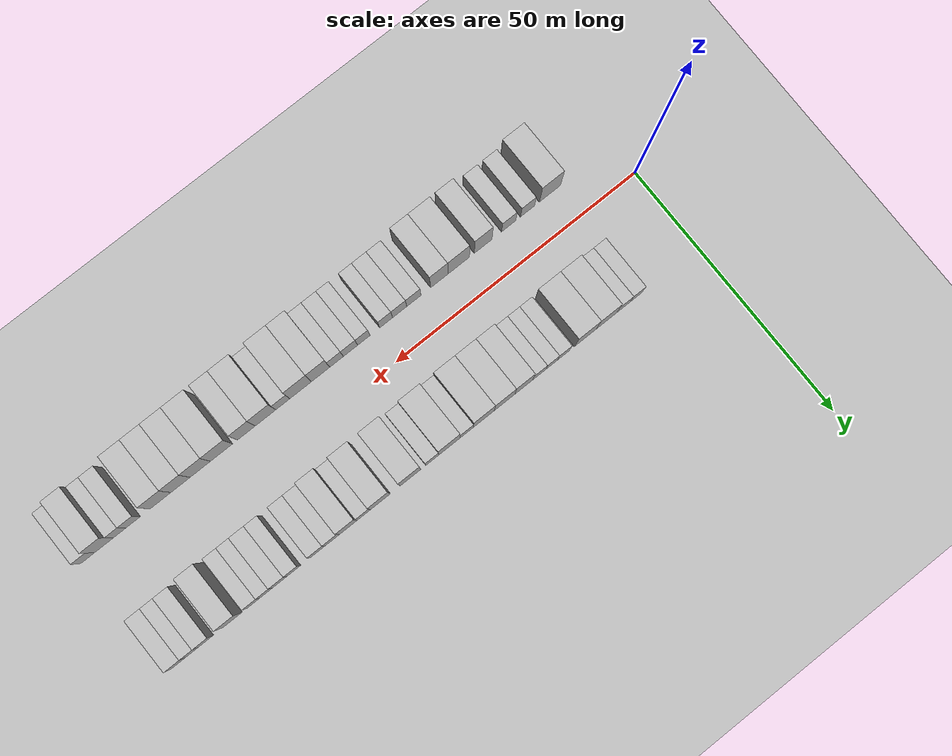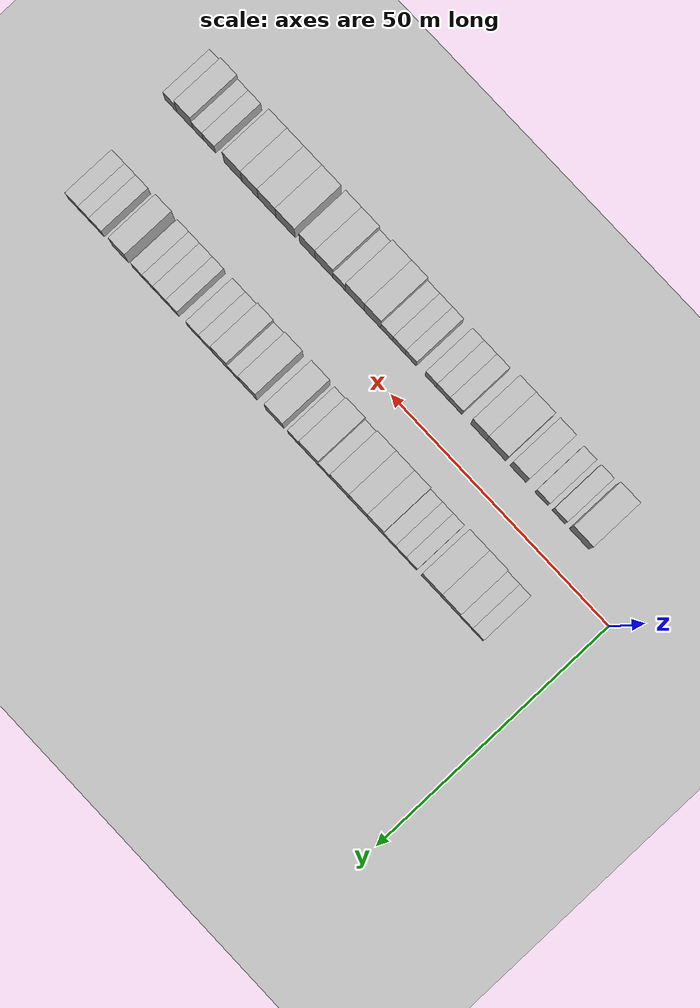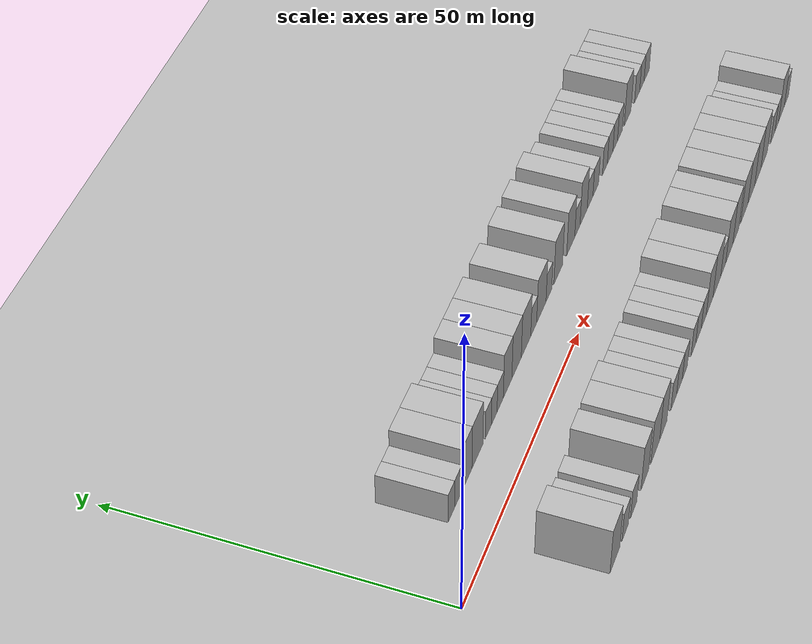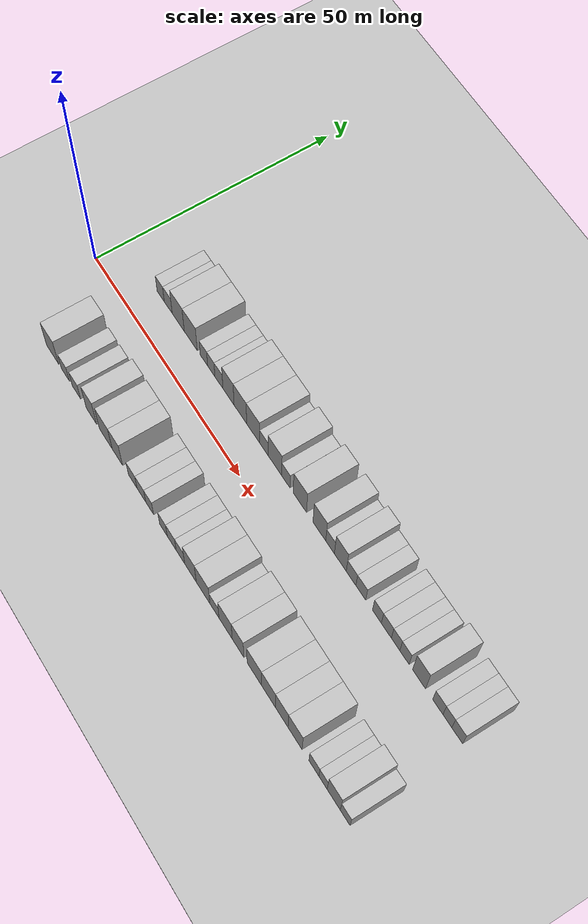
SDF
<sdf version="1.6">
 <world name="default">
  <include><name>ground_plane_1</name><uri>model://HANNAS_ground_plane</uri></include>
  <include>
   <name>ground_plane_2</name>
   <uri>model://HANNAS_ground_plane</uri>
   <pose>100 0 0  0 0 0</pose>
  </include>
  <model name="building_1">
   <static>1</static>
   <pose>13.2620 11.0000 0 0.000000 0.000000 1.570796</pose>
   <link name="link">
    <pose>0 0 3.00 0 0 0</pose>
    <collision name="collision"><geometry><box><size>10.0000 2.5239 6.0000</size></box></geometry></collision>
    <visual name="visual">
     <cast_shadows>0</cast_shadows>
     <geometry><box><size>10.0000 2.5239 6.0000</size></box></geometry>
     <material>
      <script>
       <uri>model://HANNAS_wall/materials/scripts</uri>
       <uri>model://HANNAS_wall/materials/textures</uri>
       <name>vrc/HANNAS_wall</name>
      </script>
     </material>
    </visual>
   </link>
  </model>
  <model name="building_2">
   <static>1</static>
   <pose>15.9279 11.0000 0 0.000000 0.000000 1.570796</pose>
   <link name="link">
    <pose>0 0 3.00 0 0 0</pose>
    <collision name="collision"><geometry><box><size>10.0000 2.8079 6.0000</size></box></geometry></collision>
    <visual name="visual">
     <cast_shadows>0</cast_shadows>
     <geometry><box><size>10.0000 2.8079 6.0000</size></box></geometry>
     <material>
      <script>
       <uri>model://HANNAS_wall/materials/scripts</uri>
       <uri>model://HANNAS_wall/materials/textures</uri>
       <name>vrc/HANNAS_wall</name>
      </script>
     </material>
    </visual>
   </link>
  </model>
  <model name="building_3">
   <static>1</static>
   <pose>19.4337 11.0000 0 0.000000 0.000000 1.570796</pose>
   <link name="link">
    <pose>0 0 4.50 0 0 0</pose>
    <collision name="collision"><geometry><box><size>10.0000 4.2038 9.0000</size></box></geometry></collision>
    <visual name="visual">
     <cast_shadows>0</cast_shadows>
     <geometry><box><size>10.0000 4.2038 9.0000</size></box></geometry>
     <material>
      <script>
       <uri>model://HANNAS_wall/materials/scripts</uri>
       <uri>model://HANNAS_wall/materials/textures</uri>
       <name>vrc/HANNAS_wall</name>
      </script>
     </material>
    </visual>
   </link>
  </model>
  <model name="building_4">
   <static>1</static>
   <pose>23.7834 11.0000 0 0.000000 0.000000 1.570796</pose>
   <link name="link">
    <pose>0 0 4.50 0 0 0</pose>
    <collision name="collision"><geometry><box><size>10.0000 4.4956 9.0000</size></box></geometry></collision>
    <visual name="visual">
     <cast_shadows>0</cast_shadows>
     <geometry><box><size>10.0000 4.4956 9.0000</size></box></geometry>
     <material>
      <script>
       <uri>model://HANNAS_wall/materials/scripts</uri>
       <uri>model://HANNAS_wall/materials/textures</uri>
       <name>vrc/HANNAS_wall</name>
      </script>
     </material>
    </visual>
   </link>
  </model>
  <model name="building_5">
   <static>1</static>
   <pose>28.2973 11.0000 0 0.000000 0.000000 1.570796</pose>
   <link name="link">
    <pose>0 0 3.00 0 0 0</pose>
    <collision name="collision"><geometry><box><size>10.0000 2.5322 6.0000</size></box></geometry></collision>
    <visual name="visual">
     <cast_shadows>0</cast_shadows>
     <geometry><box><size>10.0000 2.5322 6.0000</size></box></geometry>
     <material>
      <script>
       <uri>model://HANNAS_wall/materials/scripts</uri>
       <uri>model://HANNAS_wall/materials/textures</uri>
       <name>vrc/HANNAS_wall</name>
      </script>
     </material>
    </visual>
   </link>
  </model>
  <model name="building_6">
   <static>1</static>
   <pose>30.7868 11.0000 0 0.000000 0.000000 1.570796</pose>
   <link name="link">
    <pose>0 0 3.00 0 0 0</pose>
    <collision name="collision"><geometry><box><size>10.0000 2.4468 6.0000</size></box></geometry></collision>
    <visual name="visual">
     <cast_shadows>0</cast_shadows>
     <geometry><box><size>10.0000 2.4468 6.0000</size></box></geometry>
     <material>
      <script>
       <uri>model://HANNAS_wall/materials/scripts</uri>
       <uri>model://HANNAS_wall/materials/textures</uri>
       <name>vrc/HANNAS_wall</name>
      </script>
     </material>
    </visual>
   </link>
  </model>
  <model name="building_7">
   <static>1</static>
   <pose>33.3563 11.0000 0 0.000000 0.000000 1.570796</pose>
   <link name="link">
    <pose>0 0 3.00 0 0 0</pose>
    <collision name="collision"><geometry><box><size>10.0000 2.6920 6.0000</size></box></geometry></collision>
    <visual name="visual">
     <cast_shadows>0</cast_shadows>
     <geometry><box><size>10.0000 2.6920 6.0000</size></box></geometry>
     <material>
      <script>
       <uri>model://HANNAS_wall/materials/scripts</uri>
       <uri>model://HANNAS_wall/materials/textures</uri>
       <name>vrc/HANNAS_wall</name>
      </script>
     </material>
    </visual>
   </link>
  </model>
  <model name="building_8">
   <static>1</static>
   <pose>36.5656 11.0000 0 0.000000 0.000000 1.570796</pose>
   <link name="link">
    <pose>0 0 4.50 0 0 0</pose>
    <collision name="collision"><geometry><box><size>10.0000 3.7267 9.0000</size></box></geometry></collision>
    <visual name="visual">
     <cast_shadows>0</cast_shadows>
     <geometry><box><size>10.0000 3.7267 9.0000</size></box></geometry>
     <material>
      <script>
       <uri>model://HANNAS_wall/materials/scripts</uri>
       <uri>model://HANNAS_wall/materials/textures</uri>
       <name>vrc/HANNAS_wall</name>
      </script>
     </material>
    </visual>
   </link>
  </model>
  <model name="building_9">
   <static>1</static>
   <pose>40.5129 11.0000 0 0.000000 0.000000 1.570796</pose>
   <link name="link">
    <pose>0 0 4.50 0 0 0</pose>
    <collision name="collision"><geometry><box><size>10.0000 4.1679 9.0000</size></box></geometry></collision>
    <visual name="visual">
     <cast_shadows>0</cast_shadows>
     <geometry><box><size>10.0000 4.1679 9.0000</size></box></geometry>
     <material>
      <script>
       <uri>model://HANNAS_wall/materials/scripts</uri>
       <uri>model://HANNAS_wall/materials/textures</uri>
       <name>vrc/HANNAS_wall</name>
      </script>
     </material>
    </visual>
   </link>
  </model>
  <model name="building_10">
   <static>1</static>
   <pose>44.7344 11.0000 0 0.000000 0.000000 1.570796</pose>
   <link name="link">
    <pose>0 0 4.50 0 0 0</pose>
    <collision name="collision"><geometry><box><size>10.0000 4.2751 9.0000</size></box></geometry></collision>
    <visual name="visual">
     <cast_shadows>0</cast_shadows>
     <geometry><box><size>10.0000 4.2751 9.0000</size></box></geometry>
     <material>
      <script>
       <uri>model://HANNAS_wall/materials/scripts</uri>
       <uri>model://HANNAS_wall/materials/textures</uri>
       <name>vrc/HANNAS_wall</name>
      </script>
     </material>
    </visual>
   </link>
  </model>
  <model name="building_11">
   <static>1</static>
   <pose>48.2153 11.0000 0 0.000000 0.000000 1.570796</pose>
   <link name="link">
    <pose>0 0 3.00 0 0 0</pose>
    <collision name="collision"><geometry><box><size>10.0000 2.6868 6.0000</size></box></geometry></collision>
    <visual name="visual">
     <cast_shadows>0</cast_shadows>
     <geometry><box><size>10.0000 2.6868 6.0000</size></box></geometry>
     <material>
      <script>
       <uri>model://HANNAS_wall/materials/scripts</uri>
       <uri>model://HANNAS_wall/materials/textures</uri>
       <name>vrc/HANNAS_wall</name>
      </script>
     </material>
    </visual>
   </link>
  </model>
  <model name="building_12">
   <static>1</static>
   <pose>51.7412 11.0000 0 0.000000 0.000000 1.570796</pose>
   <link name="link">
    <pose>0 0 4.50 0 0 0</pose>
    <collision name="collision"><geometry><box><size>10.0000 4.3649 9.0000</size></box></geometry></collision>
    <visual name="visual">
     <cast_shadows>0</cast_shadows>
     <geometry><box><size>10.0000 4.3649 9.0000</size></box></geometry>
     <material>
      <script>
       <uri>model://HANNAS_wall/materials/scripts</uri>
       <uri>model://HANNAS_wall/materials/textures</uri>
       <name>vrc/HANNAS_wall</name>
      </script>
     </material>
    </visual>
   </link>
  </model>
  <model name="building_13">
   <static>1</static>
   <pose>55.2586 11.0000 0 0.000000 0.000000 1.570796</pose>
   <link name="link">
    <pose>0 0 3.00 0 0 0</pose>
    <collision name="collision"><geometry><box><size>10.0000 2.6699 6.0000</size></box></geometry></collision>
    <visual name="visual">
     <cast_shadows>0</cast_shadows>
     <geometry><box><size>10.0000 2.6699 6.0000</size></box></geometry>
     <material>
      <script>
       <uri>model://HANNAS_wall/materials/scripts</uri>
       <uri>model://HANNAS_wall/materials/textures</uri>
       <name>vrc/HANNAS_wall</name>
      </script>
     </material>
    </visual>
   </link>
  </model>
  <model name="building_14">
   <static>1</static>
   <pose>59.6902 11.0000 0 0.000000 0.000000 1.570796</pose>
   <link name="link">
    <pose>0 0 4.50 0 0 0</pose>
    <collision name="collision"><geometry><box><size>10.0000 4.1933 9.0000</size></box></geometry></collision>
    <visual name="visual">
     <cast_shadows>0</cast_shadows>
     <geometry><box><size>10.0000 4.1933 9.0000</size></box></geometry>
     <material>
      <script>
       <uri>model://HANNAS_wall/materials/scripts</uri>
       <uri>model://HANNAS_wall/materials/textures</uri>
       <name>vrc/HANNAS_wall</name>
      </script>
     </material>
    </visual>
   </link>
  </model>
  <model name="building_15">
   <static>1</static>
   <pose>65.7693 11.0000 0 0.000000 0.000000 1.570796</pose>
   <link name="link">
    <pose>0 0 4.50 0 0 0</pose>
    <collision name="collision"><geometry><box><size>10.0000 3.9649 9.0000</size></box></geometry></collision>
    <visual name="visual">
     <cast_shadows>0</cast_shadows>
     <geometry><box><size>10.0000 3.9649 9.0000</size></box></geometry>
     <material>
      <script>
       <uri>model://HANNAS_wall/materials/scripts</uri>
       <uri>model://HANNAS_wall/materials/textures</uri>
       <name>vrc/HANNAS_wall</name>
      </script>
     </material>
    </visual>
   </link>
  </model>
  <model name="building_16">
   <static>1</static>
   <pose>69.0763 11.0000 0 0.000000 0.000000 1.570796</pose>
   <link name="link">
    <pose>0 0 3.00 0 0 0</pose>
    <collision name="collision"><geometry><box><size>10.0000 2.6493 6.0000</size></box></geometry></collision>
    <visual name="visual">
     <cast_shadows>0</cast_shadows>
     <geometry><box><size>10.0000 2.6493 6.0000</size></box></geometry>
     <material>
      <script>
       <uri>model://HANNAS_wall/materials/scripts</uri>
       <uri>model://HANNAS_wall/materials/textures</uri>
       <name>vrc/HANNAS_wall</name>
      </script>
     </material>
    </visual>
   </link>
  </model>
  <model name="building_17">
   <static>1</static>
   <pose>72.2110 11.0000 0 0.000000 0.000000 1.570796</pose>
   <link name="link">
    <pose>0 0 4.50 0 0 0</pose>
    <collision name="collision"><geometry><box><size>10.0000 3.6201 9.0000</size></box></geometry></collision>
    <visual name="visual">
     <cast_shadows>0</cast_shadows>
     <geometry><box><size>10.0000 3.6201 9.0000</size></box></geometry>
     <material>
      <script>
       <uri>model://HANNAS_wall/materials/scripts</uri>
       <uri>model://HANNAS_wall/materials/textures</uri>
       <name>vrc/HANNAS_wall</name>
      </script>
     </material>
    </visual>
   </link>
  </model>
  <model name="building_18">
   <static>1</static>
   <pose>75.4774 11.0000 0 0.000000 0.000000 1.570796</pose>
   <link name="link">
    <pose>0 0 3.00 0 0 0</pose>
    <collision name="collision"><geometry><box><size>10.0000 2.9127 6.0000</size></box></geometry></collision>
    <visual name="visual">
     <cast_shadows>0</cast_shadows>
     <geometry><box><size>10.0000 2.9127 6.0000</size></box></geometry>
     <material>
      <script>
       <uri>model://HANNAS_wall/materials/scripts</uri>
       <uri>model://HANNAS_wall/materials/textures</uri>
       <name>vrc/HANNAS_wall</name>
      </script>
     </material>
    </visual>
   </link>
  </model>
  <model name="building_19">
   <static>1</static>
   <pose>78.4027 11.0000 0 0.000000 0.000000 1.570796</pose>
   <link name="link">
    <pose>0 0 3.00 0 0 0</pose>
    <collision name="collision"><geometry><box><size>10.0000 2.9378 6.0000</size></box></geometry></collision>
    <visual name="visual">
     <cast_shadows>0</cast_shadows>
     <geometry><box><size>10.0000 2.9378 6.0000</size></box></geometry>
     <material>
      <script>
       <uri>model://HANNAS_wall/materials/scripts</uri>
       <uri>model://HANNAS_wall/materials/textures</uri>
       <name>vrc/HANNAS_wall</name>
      </script>
     </material>
    </visual>
   </link>
  </model>
  <model name="building_20">
   <static>1</static>
   <pose>83.1809 11.0000 0 0.000000 0.000000 1.570796</pose>
   <link name="link">
    <pose>0 0 3.00 0 0 0</pose>
    <collision name="collision"><geometry><box><size>10.0000 2.6186 6.0000</size></box></geometry></collision>
    <visual name="visual">
     <cast_shadows>0</cast_shadows>
     <geometry><box><size>10.0000 2.6186 6.0000</size></box></geometry>
     <material>
      <script>
       <uri>model://HANNAS_wall/materials/scripts</uri>
       <uri>model://HANNAS_wall/materials/textures</uri>
       <name>vrc/HANNAS_wall</name>
      </script>
     </material>
    </visual>
   </link>
  </model>
  <model name="building_21">
   <static>1</static>
   <pose>85.9597 11.0000 0 0.000000 0.000000 1.570796</pose>
   <link name="link">
    <pose>0 0 3.00 0 0 0</pose>
    <collision name="collision"><geometry><box><size>10.0000 2.9390 6.0000</size></box></geometry></collision>
    <visual name="visual">
     <cast_shadows>0</cast_shadows>
     <geometry><box><size>10.0000 2.9390 6.0000</size></box></geometry>
     <material>
      <script>
       <uri>model://HANNAS_wall/materials/scripts</uri>
       <uri>model://HANNAS_wall/materials/textures</uri>
       <name>vrc/HANNAS_wall</name>
      </script>
     </material>
    </visual>
   </link>
  </model>
  <model name="building_22">
   <static>1</static>
   <pose>88.6593 11.0000 0 0.000000 0.000000 1.570796</pose>
   <link name="link">
    <pose>0 0 3.00 0 0 0</pose>
    <collision name="collision"><geometry><box><size>10.0000 2.4602 6.0000</size></box></geometry></collision>
    <visual name="visual">
     <cast_shadows>0</cast_shadows>
     <geometry><box><size>10.0000 2.4602 6.0000</size></box></geometry>
     <material>
      <script>
       <uri>model://HANNAS_wall/materials/scripts</uri>
       <uri>model://HANNAS_wall/materials/textures</uri>
       <name>vrc/HANNAS_wall</name>
      </script>
     </material>
    </visual>
   </link>
  </model>
  <model name="building_23">
   <static>1</static>
   <pose>91.2273 11.0000 0 0.000000 0.000000 1.570796</pose>
   <link name="link">
    <pose>0 0 3.00 0 0 0</pose>
    <collision name="collision"><geometry><box><size>10.0000 2.6759 6.0000</size></box></geometry></collision>
    <visual name="visual">
     <cast_shadows>0</cast_shadows>
     <geometry><box><size>10.0000 2.6759 6.0000</size></box></geometry>
     <material>
      <script>
       <uri>model://HANNAS_wall/materials/scripts</uri>
       <uri>model://HANNAS_wall/materials/textures</uri>
       <name>vrc/HANNAS_wall</name>
      </script>
     </material>
    </visual>
   </link>
  </model>
  <model name="building_24">
   <static>1</static>
   <pose>95.4174 11.0000 0 0.000000 0.000000 1.570796</pose>
   <link name="link">
    <pose>0 0 4.50 0 0 0</pose>
    <collision name="collision"><geometry><box><size>10.0000 3.7043 9.0000</size></box></geometry></collision>
    <visual name="visual">
     <cast_shadows>0</cast_shadows>
     <geometry><box><size>10.0000 3.7043 9.0000</size></box></geometry>
     <material>
      <script>
       <uri>model://HANNAS_wall/materials/scripts</uri>
       <uri>model://HANNAS_wall/materials/textures</uri>
       <name>vrc/HANNAS_wall</name>
      </script>
     </material>
    </visual>
   </link>
  </model>
  <model name="building_25">
   <static>1</static>
   <pose>100.7175 11.0000 0 0.000000 0.000000 1.570796</pose>
   <link name="link">
    <pose>0 0 3.00 0 0 0</pose>
    <collision name="collision"><geometry><box><size>10.0000 2.8959 6.0000</size></box></geometry></collision>
    <visual name="visual">
     <cast_shadows>0</cast_shadows>
     <geometry><box><size>10.0000 2.8959 6.0000</size></box></geometry>
     <material>
      <script>
       <uri>model://HANNAS_wall/materials/scripts</uri>
       <uri>model://HANNAS_wall/materials/textures</uri>
       <name>vrc/HANNAS_wall</name>
      </script>
     </material>
    </visual>
   </link>
  </model>
  <model name="building_26">
   <static>1</static>
   <pose>103.4098 11.0000 0 0.000000 0.000000 1.570796</pose>
   <link name="link">
    <pose>0 0 3.00 0 0 0</pose>
    <collision name="collision"><geometry><box><size>10.0000 2.4887 6.0000</size></box></geometry></collision>
    <visual name="visual">
     <cast_shadows>0</cast_shadows>
     <geometry><box><size>10.0000 2.4887 6.0000</size></box></geometry>
     <material>
      <script>
       <uri>model://HANNAS_wall/materials/scripts</uri>
       <uri>model://HANNAS_wall/materials/textures</uri>
       <name>vrc/HANNAS_wall</name>
      </script>
     </material>
    </visual>
   </link>
  </model>
  <model name="building_27">
   <static>1</static>
   <pose>106.1464 11.0000 0 0.000000 0.000000 1.570796</pose>
   <link name="link">
    <pose>0 0 3.00 0 0 0</pose>
    <collision name="collision"><geometry><box><size>10.0000 2.9846 6.0000</size></box></geometry></collision>
    <visual name="visual">
     <cast_shadows>0</cast_shadows>
     <geometry><box><size>10.0000 2.9846 6.0000</size></box></geometry>
     <material>
      <script>
       <uri>model://HANNAS_wall/materials/scripts</uri>
       <uri>model://HANNAS_wall/materials/textures</uri>
       <name>vrc/HANNAS_wall</name>
      </script>
     </material>
    </visual>
   </link>
  </model>
  <model name="building_56">
   <static>1</static>
   <pose>13.2249 -11.0000 0 0.000000 0.000000 1.570796</pose>
   <link name="link">
    <pose>0 0 4.50 0 0 0</pose>
    <collision name="collision"><geometry><box><size>10.0000 4.4498 9.0000</size></box></geometry></collision>
    <visual name="visual">
     <cast_shadows>0</cast_shadows>
     <geometry><box><size>10.0000 4.4498 9.0000</size></box></geometry>
     <material>
      <script>
       <uri>model://HANNAS_wall/materials/scripts</uri>
       <uri>model://HANNAS_wall/materials/textures</uri>
       <name>vrc/HANNAS_wall</name>
      </script>
     </material>
    </visual>
   </link>
  </model>
  <model name="building_57">
   <static>1</static>
   <pose>17.9201 -11.0000 0 0.000000 0.000000 1.570796</pose>
   <link name="link">
    <pose>0 0 3.00 0 0 0</pose>
    <collision name="collision"><geometry><box><size>10.0000 2.9406 6.0000</size></box></geometry></collision>
    <visual name="visual">
     <cast_shadows>0</cast_shadows>
     <geometry><box><size>10.0000 2.9406 6.0000</size></box></geometry>
     <material>
      <script>
       <uri>model://HANNAS_wall/materials/scripts</uri>
       <uri>model://HANNAS_wall/materials/textures</uri>
       <name>vrc/HANNAS_wall</name>
      </script>
     </material>
    </visual>
   </link>
  </model>
  <model name="building_58">
   <static>1</static>
   <pose>21.8695 -11.0000 0 0.000000 0.000000 1.570796</pose>
   <link name="link">
    <pose>0 0 3.00 0 0 0</pose>
    <collision name="collision"><geometry><box><size>10.0000 2.9582 6.0000</size></box></geometry></collision>
    <visual name="visual">
     <cast_shadows>0</cast_shadows>
     <geometry><box><size>10.0000 2.9582 6.0000</size></box></geometry>
     <material>
      <script>
       <uri>model://HANNAS_wall/materials/scripts</uri>
       <uri>model://HANNAS_wall/materials/textures</uri>
       <name>vrc/HANNAS_wall</name>
      </script>
     </material>
    </visual>
   </link>
  </model>
  <model name="building_59">
   <static>1</static>
   <pose>27.1877 -11.0000 0 0.000000 0.000000 1.570796</pose>
   <link name="link">
    <pose>0 0 4.50 0 0 0</pose>
    <collision name="collision"><geometry><box><size>10.0000 3.6783 9.0000</size></box></geometry></collision>
    <visual name="visual">
     <cast_shadows>0</cast_shadows>
     <geometry><box><size>10.0000 3.6783 9.0000</size></box></geometry>
     <material>
      <script>
       <uri>model://HANNAS_wall/materials/scripts</uri>
       <uri>model://HANNAS_wall/materials/textures</uri>
       <name>vrc/HANNAS_wall</name>
      </script>
     </material>
    </visual>
   </link>
  </model>
  <model name="building_60">
   <static>1</static>
   <pose>32.2404 -11.0000 0 0.000000 0.000000 1.570796</pose>
   <link name="link">
    <pose>0 0 4.50 0 0 0</pose>
    <collision name="collision"><geometry><box><size>10.0000 4.4270 9.0000</size></box></geometry></collision>
    <visual name="visual">
     <cast_shadows>0</cast_shadows>
     <geometry><box><size>10.0000 4.4270 9.0000</size></box></geometry>
     <material>
      <script>
       <uri>model://HANNAS_wall/materials/scripts</uri>
       <uri>model://HANNAS_wall/materials/textures</uri>
       <name>vrc/HANNAS_wall</name>
      </script>
     </material>
    </visual>
   </link>
  </model>
  <model name="building_61">
   <static>1</static>
   <pose>36.2600 -11.0000 0 0.000000 0.000000 1.570796</pose>
   <link name="link">
    <pose>0 0 4.50 0 0 0</pose>
    <collision name="collision"><geometry><box><size>10.0000 3.6122 9.0000</size></box></geometry></collision>
    <visual name="visual">
     <cast_shadows>0</cast_shadows>
     <geometry><box><size>10.0000 3.6122 9.0000</size></box></geometry>
     <material>
      <script>
       <uri>model://HANNAS_wall/materials/scripts</uri>
       <uri>model://HANNAS_wall/materials/textures</uri>
       <name>vrc/HANNAS_wall</name>
      </script>
     </material>
    </visual>
   </link>
  </model>
  <model name="building_62">
   <static>1</static>
   <pose>41.5391 -11.0000 0 0.000000 0.000000 1.570796</pose>
   <link name="link">
    <pose>0 0 3.00 0 0 0</pose>
    <collision name="collision"><geometry><box><size>10.0000 2.9460 6.0000</size></box></geometry></collision>
    <visual name="visual">
     <cast_shadows>0</cast_shadows>
     <geometry><box><size>10.0000 2.9460 6.0000</size></box></geometry>
     <material>
      <script>
       <uri>model://HANNAS_wall/materials/scripts</uri>
       <uri>model://HANNAS_wall/materials/textures</uri>
       <name>vrc/HANNAS_wall</name>
      </script>
     </material>
    </visual>
   </link>
  </model>
  <model name="building_63">
   <static>1</static>
   <pose>44.4759 -11.0000 0 0.000000 0.000000 1.570796</pose>
   <link name="link">
    <pose>0 0 3.00 0 0 0</pose>
    <collision name="collision"><geometry><box><size>10.0000 2.9277 6.0000</size></box></geometry></collision>
    <visual name="visual">
     <cast_shadows>0</cast_shadows>
     <geometry><box><size>10.0000 2.9277 6.0000</size></box></geometry>
     <material>
      <script>
       <uri>model://HANNAS_wall/materials/scripts</uri>
       <uri>model://HANNAS_wall/materials/textures</uri>
       <name>vrc/HANNAS_wall</name>
      </script>
     </material>
    </visual>
   </link>
  </model>
  <model name="building_64">
   <static>1</static>
   <pose>47.2552 -11.0000 0 0.000000 0.000000 1.570796</pose>
   <link name="link">
    <pose>0 0 3.00 0 0 0</pose>
    <collision name="collision"><geometry><box><size>10.0000 2.6308 6.0000</size></box></geometry></collision>
    <visual name="visual">
     <cast_shadows>0</cast_shadows>
     <geometry><box><size>10.0000 2.6308 6.0000</size></box></geometry>
     <material>
      <script>
       <uri>model://HANNAS_wall/materials/scripts</uri>
       <uri>model://HANNAS_wall/materials/textures</uri>
       <name>vrc/HANNAS_wall</name>
      </script>
     </material>
    </visual>
   </link>
  </model>
  <model name="building_65">
   <static>1</static>
   <pose>51.8342 -11.0000 0 0.000000 0.000000 1.570796</pose>
   <link name="link">
    <pose>0 0 3.00 0 0 0</pose>
    <collision name="collision"><geometry><box><size>10.0000 2.5273 6.0000</size></box></geometry></collision>
    <visual name="visual">
     <cast_shadows>0</cast_shadows>
     <geometry><box><size>10.0000 2.5273 6.0000</size></box></geometry>
     <material>
      <script>
       <uri>model://HANNAS_wall/materials/scripts</uri>
       <uri>model://HANNAS_wall/materials/textures</uri>
       <name>vrc/HANNAS_wall</name>
      </script>
     </material>
    </visual>
   </link>
  </model>
  <model name="building_66">
   <static>1</static>
   <pose>54.5648 -11.0000 0 0.000000 0.000000 1.570796</pose>
   <link name="link">
    <pose>0 0 3.00 0 0 0</pose>
    <collision name="collision"><geometry><box><size>10.0000 2.9340 6.0000</size></box></geometry></collision>
    <visual name="visual">
     <cast_shadows>0</cast_shadows>
     <geometry><box><size>10.0000 2.9340 6.0000</size></box></geometry>
     <material>
      <script>
       <uri>model://HANNAS_wall/materials/scripts</uri>
       <uri>model://HANNAS_wall/materials/textures</uri>
       <name>vrc/HANNAS_wall</name>
      </script>
     </material>
    </visual>
   </link>
  </model>
  <model name="building_67">
   <static>1</static>
   <pose>57.4182 -11.0000 0 0.000000 0.000000 1.570796</pose>
   <link name="link">
    <pose>0 0 3.00 0 0 0</pose>
    <collision name="collision"><geometry><box><size>10.0000 2.7728 6.0000</size></box></geometry></collision>
    <visual name="visual">
     <cast_shadows>0</cast_shadows>
     <geometry><box><size>10.0000 2.7728 6.0000</size></box></geometry>
     <material>
      <script>
       <uri>model://HANNAS_wall/materials/scripts</uri>
       <uri>model://HANNAS_wall/materials/textures</uri>
       <name>vrc/HANNAS_wall</name>
      </script>
     </material>
    </visual>
   </link>
  </model>
  <model name="building_68">
   <static>1</static>
   <pose>60.6773 -11.0000 0 0.000000 0.000000 1.570796</pose>
   <link name="link">
    <pose>0 0 4.50 0 0 0</pose>
    <collision name="collision"><geometry><box><size>10.0000 3.7452 9.0000</size></box></geometry></collision>
    <visual name="visual">
     <cast_shadows>0</cast_shadows>
     <geometry><box><size>10.0000 3.7452 9.0000</size></box></geometry>
     <material>
      <script>
       <uri>model://HANNAS_wall/materials/scripts</uri>
       <uri>model://HANNAS_wall/materials/textures</uri>
       <name>vrc/HANNAS_wall</name>
      </script>
     </material>
    </visual>
   </link>
  </model>
  <model name="building_69">
   <static>1</static>
   <pose>64.7349 -11.0000 0 0.000000 0.000000 1.570796</pose>
   <link name="link">
    <pose>0 0 4.50 0 0 0</pose>
    <collision name="collision"><geometry><box><size>10.0000 4.3701 9.0000</size></box></geometry></collision>
    <visual name="visual">
     <cast_shadows>0</cast_shadows>
     <geometry><box><size>10.0000 4.3701 9.0000</size></box></geometry>
     <material>
      <script>
       <uri>model://HANNAS_wall/materials/scripts</uri>
       <uri>model://HANNAS_wall/materials/textures</uri>
       <name>vrc/HANNAS_wall</name>
      </script>
     </material>
    </visual>
   </link>
  </model>
  <model name="building_70">
   <static>1</static>
   <pose>68.3475 -11.0000 0 0.000000 0.000000 1.570796</pose>
   <link name="link">
    <pose>0 0 3.00 0 0 0</pose>
    <collision name="collision"><geometry><box><size>10.0000 2.8551 6.0000</size></box></geometry></collision>
    <visual name="visual">
     <cast_shadows>0</cast_shadows>
     <geometry><box><size>10.0000 2.8551 6.0000</size></box></geometry>
     <material>
      <script>
       <uri>model://HANNAS_wall/materials/scripts</uri>
       <uri>model://HANNAS_wall/materials/textures</uri>
       <name>vrc/HANNAS_wall</name>
      </script>
     </material>
    </visual>
   </link>
  </model>
  <model name="building_71">
   <static>1</static>
   <pose>71.8405 -11.0000 0 0.000000 0.000000 1.570796</pose>
   <link name="link">
    <pose>0 0 4.50 0 0 0</pose>
    <collision name="collision"><geometry><box><size>10.0000 4.1308 9.0000</size></box></geometry></collision>
    <visual name="visual">
     <cast_shadows>0</cast_shadows>
     <geometry><box><size>10.0000 4.1308 9.0000</size></box></geometry>
     <material>
      <script>
       <uri>model://HANNAS_wall/materials/scripts</uri>
       <uri>model://HANNAS_wall/materials/textures</uri>
       <name>vrc/HANNAS_wall</name>
      </script>
     </material>
    </visual>
   </link>
  </model>
  <model name="building_72">
   <static>1</static>
   <pose>75.7114 -11.0000 0 0.000000 0.000000 1.570796</pose>
   <link name="link">
    <pose>0 0 4.50 0 0 0</pose>
    <collision name="collision"><geometry><box><size>10.0000 3.6112 9.0000</size></box></geometry></collision>
    <visual name="visual">
     <cast_shadows>0</cast_shadows>
     <geometry><box><size>10.0000 3.6112 9.0000</size></box></geometry>
     <material>
      <script>
       <uri>model://HANNAS_wall/materials/scripts</uri>
       <uri>model://HANNAS_wall/materials/textures</uri>
       <name>vrc/HANNAS_wall</name>
      </script>
     </material>
    </visual>
   </link>
  </model>
  <model name="building_73">
   <static>1</static>
   <pose>80.7352 -11.0000 0 0.000000 0.000000 1.570796</pose>
   <link name="link">
    <pose>0 0 4.50 0 0 0</pose>
    <collision name="collision"><geometry><box><size>10.0000 4.4365 9.0000</size></box></geometry></collision>
    <visual name="visual">
     <cast_shadows>0</cast_shadows>
     <geometry><box><size>10.0000 4.4365 9.0000</size></box></geometry>
     <material>
      <script>
       <uri>model://HANNAS_wall/materials/scripts</uri>
       <uri>model://HANNAS_wall/materials/textures</uri>
       <name>vrc/HANNAS_wall</name>
      </script>
     </material>
    </visual>
   </link>
  </model>
  <model name="building_74">
   <static>1</static>
   <pose>85.0055 -11.0000 0 0.000000 0.000000 1.570796</pose>
   <link name="link">
    <pose>0 0 4.50 0 0 0</pose>
    <collision name="collision"><geometry><box><size>10.0000 4.1041 9.0000</size></box></geometry></collision>
    <visual name="visual">
     <cast_shadows>0</cast_shadows>
     <geometry><box><size>10.0000 4.1041 9.0000</size></box></geometry>
     <material>
      <script>
       <uri>model://HANNAS_wall/materials/scripts</uri>
       <uri>model://HANNAS_wall/materials/textures</uri>
       <name>vrc/HANNAS_wall</name>
      </script>
     </material>
    </visual>
   </link>
  </model>
  <model name="building_75">
   <static>1</static>
   <pose>88.9736 -11.0000 0 0.000000 0.000000 1.570796</pose>
   <link name="link">
    <pose>0 0 4.50 0 0 0</pose>
    <collision name="collision"><geometry><box><size>10.0000 3.8321 9.0000</size></box></geometry></collision>
    <visual name="visual">
     <cast_shadows>0</cast_shadows>
     <geometry><box><size>10.0000 3.8321 9.0000</size></box></geometry>
     <material>
      <script>
       <uri>model://HANNAS_wall/materials/scripts</uri>
       <uri>model://HANNAS_wall/materials/textures</uri>
       <name>vrc/HANNAS_wall</name>
      </script>
     </material>
    </visual>
   </link>
  </model>
  <model name="building_76">
   <static>1</static>
   <pose>92.9575 -11.0000 0 0.000000 0.000000 1.570796</pose>
   <link name="link">
    <pose>0 0 4.50 0 0 0</pose>
    <collision name="collision"><geometry><box><size>10.0000 4.1358 9.0000</size></box></geometry></collision>
    <visual name="visual">
     <cast_shadows>0</cast_shadows>
     <geometry><box><size>10.0000 4.1358 9.0000</size></box></geometry>
     <material>
      <script>
       <uri>model://HANNAS_wall/materials/scripts</uri>
       <uri>model://HANNAS_wall/materials/textures</uri>
       <name>vrc/HANNAS_wall</name>
      </script>
     </material>
    </visual>
   </link>
  </model>
  <model name="building_77">
   <static>1</static>
   <pose>98.4685 -11.0000 0 0.000000 0.000000 1.570796</pose>
   <link name="link">
    <pose>0 0 3.00 0 0 0</pose>
    <collision name="collision"><geometry><box><size>10.0000 2.8861 6.0000</size></box></geometry></collision>
    <visual name="visual">
     <cast_shadows>0</cast_shadows>
     <geometry><box><size>10.0000 2.8861 6.0000</size></box></geometry>
     <material>
      <script>
       <uri>model://HANNAS_wall/materials/scripts</uri>
       <uri>model://HANNAS_wall/materials/textures</uri>
       <name>vrc/HANNAS_wall</name>
      </script>
     </material>
    </visual>
   </link>
  </model>
  <model name="building_78">
   <static>1</static>
   <pose>101.1198 -11.0000 0 0.000000 0.000000 1.570796</pose>
   <link name="link">
    <pose>0 0 3.00 0 0 0</pose>
    <collision name="collision"><geometry><box><size>10.0000 2.4165 6.0000</size></box></geometry></collision>
    <visual name="visual">
     <cast_shadows>0</cast_shadows>
     <geometry><box><size>10.0000 2.4165 6.0000</size></box></geometry>
     <material>
      <script>
       <uri>model://HANNAS_wall/materials/scripts</uri>
       <uri>model://HANNAS_wall/materials/textures</uri>
       <name>vrc/HANNAS_wall</name>
      </script>
     </material>
    </visual>
   </link>
  </model>
  <model name="building_79">
   <static>1</static>
   <pose>104.1933 -11.0000 0 0.000000 0.000000 1.570796</pose>
   <link name="link">
    <pose>0 0 4.50 0 0 0</pose>
    <collision name="collision"><geometry><box><size>10.0000 3.7307 9.0000</size></box></geometry></collision>
    <visual name="visual">
     <cast_shadows>0</cast_shadows>
     <geometry><box><size>10.0000 3.7307 9.0000</size></box></geometry>
     <material>
      <script>
       <uri>model://HANNAS_wall/materials/scripts</uri>
       <uri>model://HANNAS_wall/materials/textures</uri>
       <name>vrc/HANNAS_wall</name>
      </script>
     </material>
    </visual>
   </link>
  </model>
  <model name="building_80">
   <static>1</static>
   <pose>107.4506 -11.0000 0 0.000000 0.000000 1.570796</pose>
   <link name="link">
    <pose>0 0 3.00 0 0 0</pose>
    <collision name="collision"><geometry><box><size>10.0000 2.7839 6.0000</size></box></geometry></collision>
    <visual name="visual">
     <cast_shadows>0</cast_shadows>
     <geometry><box><size>10.0000 2.7839 6.0000</size></box></geometry>
     <material>
      <script>
       <uri>model://HANNAS_wall/materials/scripts</uri>
       <uri>model://HANNAS_wall/materials/textures</uri>
       <name>vrc/HANNAS_wall</name>
      </script>
     </material>
    </visual>
   </link>
  </model>
 </world>
</sdf>
